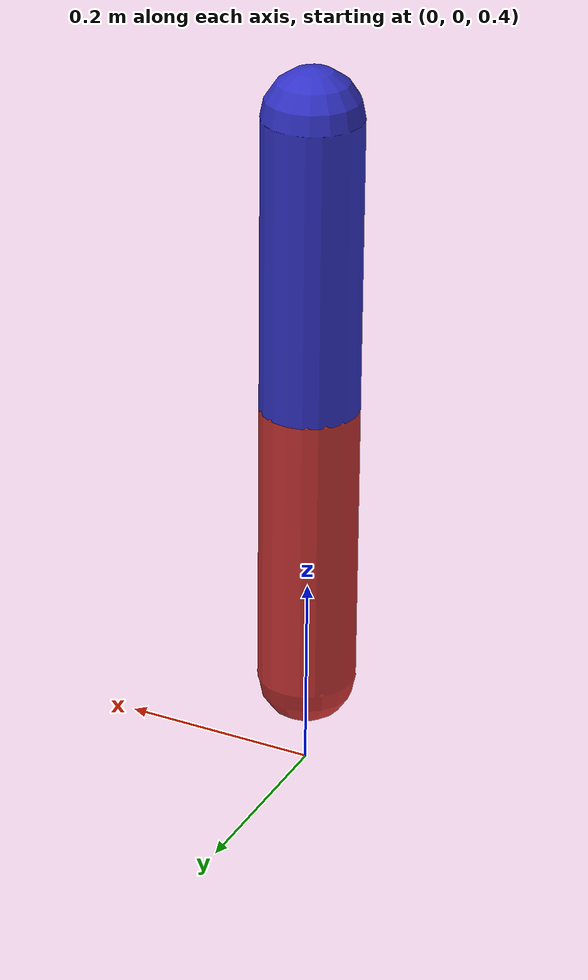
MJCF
<mujoco model="tendon_actuator">
  <compiler angle="radian" autolimits="true"/>

  <default>
    <joint damping="0.1" armature="0.01"/>
    <geom size="0.05"/>
  </default>

  <worldbody>
    <body name="body1" pos="0 0 0.5">
      <inertial mass="1" pos="0 0 0" diaginertia="0.01 0.01 0.01"/>
      <joint name="hinge1" type="hinge" axis="0 1 0" range="-1.57 1.57"/>
      <geom type="capsule" fromto="0 0 0 0 0 0.3" rgba="0.8 0.2 0.2 1"/>

      <body name="body2" pos="0 0 0.3">
        <inertial mass="0.5" pos="0 0 0.15" diaginertia="0.005 0.005 0.005"/>
        <joint name="hinge2" type="hinge" axis="0 1 0" range="-1.57 1.57"/>
        <geom type="capsule" fromto="0 0 0 0 0 0.3" rgba="0.2 0.2 0.8 1"/>
      </body>
    </body>
  </worldbody>

  <tendon>
    <fixed name="coupled_tendon">
      <joint joint="hinge1" coef="1"/>
      <joint joint="hinge2" coef="1"/>
    </fixed>
  </tendon>

  <actuator>
    <position name="tendon_actuator" tendon="coupled_tendon" kp="10" ctrlrange="0 3.14"/>
  </actuator>
</mujoco>
